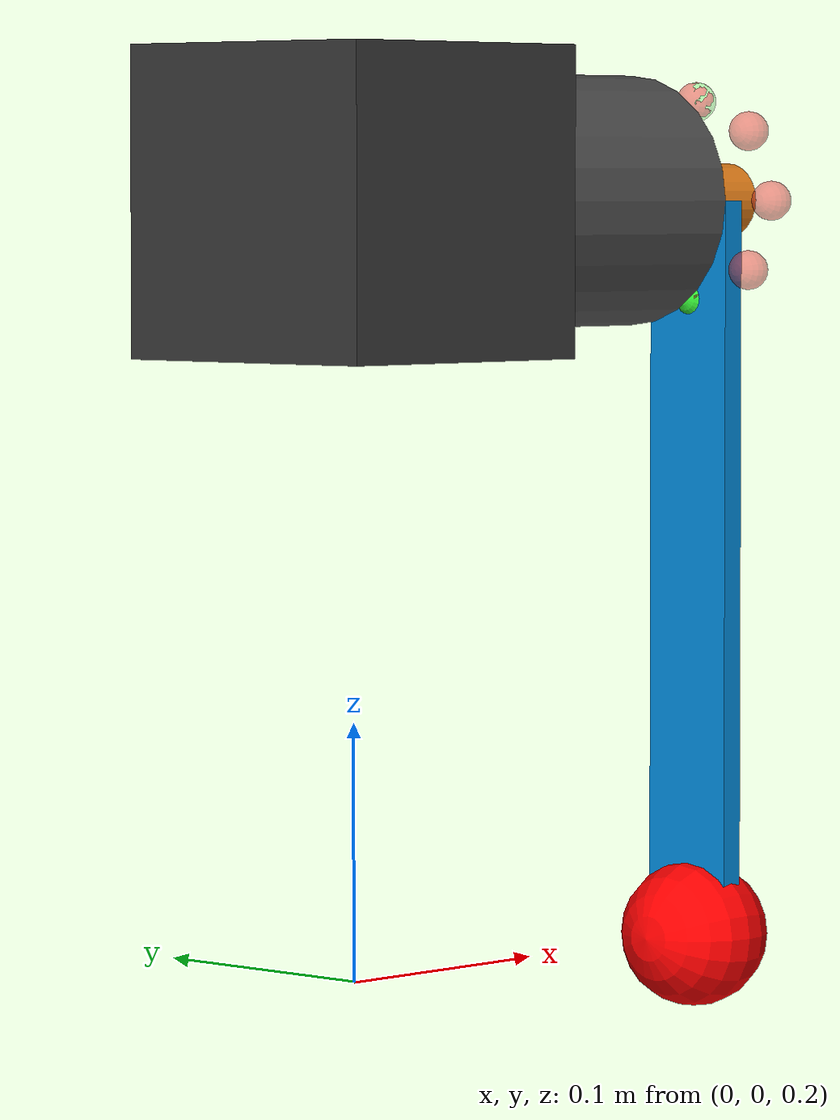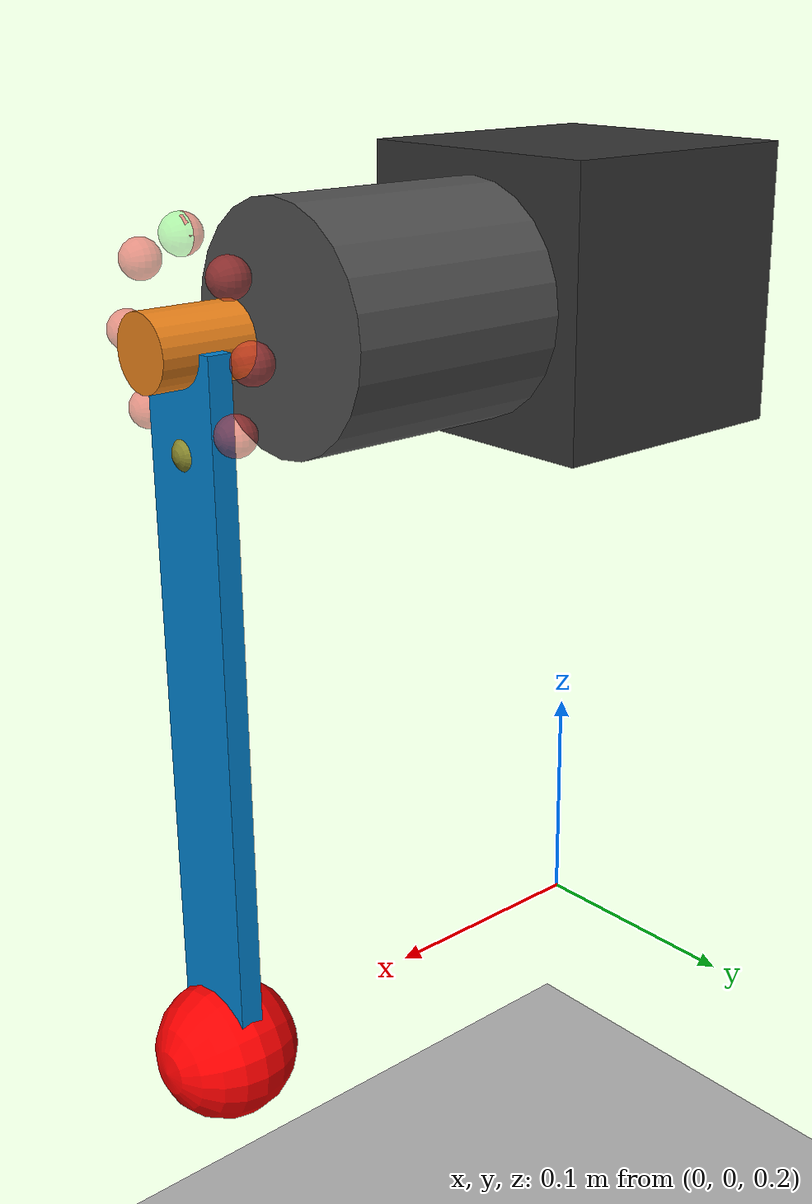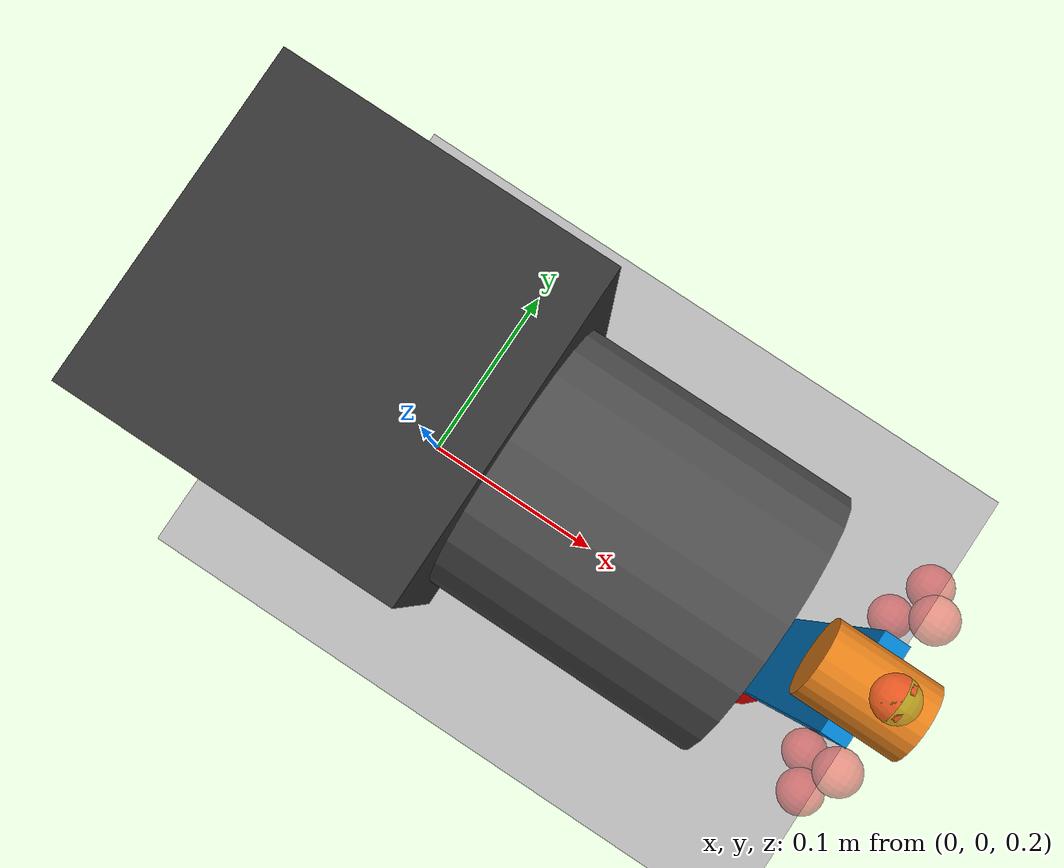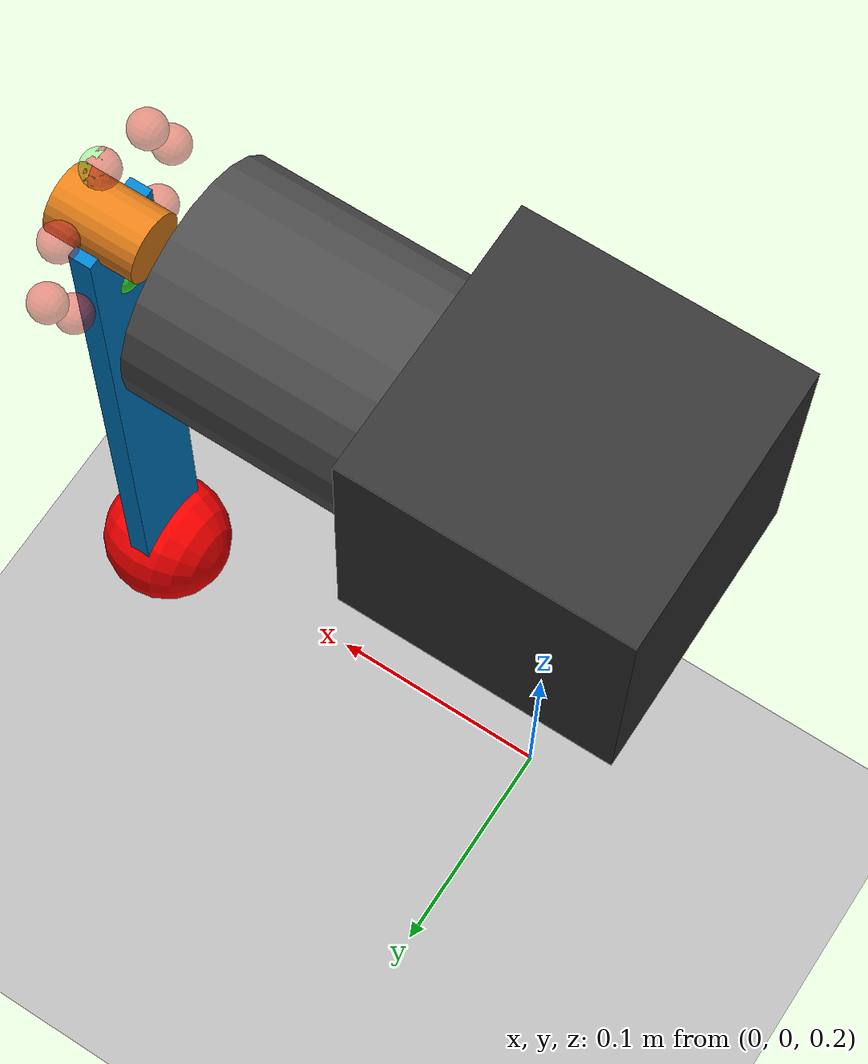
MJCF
<mujoco model="1dof_joint_full_physics_fixed">
    <!--
       编译器与仿真设置
    -->
    <compiler angle="radian" autolimits="true" inertiafromgeom="true"/>
    <option timestep="0.002" integrator="RK4" gravity="0 0 -9.81">
      <flag contact="enable" energy="enable"/>
    </option>

    <statistic center="0.2 0 0.5" extent="0.8"/>

    <visual>
      <headlight diffuse="0.6 0.6 0.6" ambient="0.3 0.3 0.3" specular="0 0 0"/>
      <rgba haze="0.15 0.25 0.35 1"/>
      <global azimuth="140" elevation="-20"/>
    </visual>

    <default>
      <!-- 通用关节参数：降低摩擦以突显齿槽效应 -->
      <joint damping="0.02" frictionloss="0.02" armature="0.005"/>
      <geom type="cylinder" size="0.05 0.02" rgba="0.7 0.7 0.7 1"/>

      <!--
         [齿槽效应专用接触配置]
         solref: "0.02 1" -> 模拟磁力的柔性，允许小球互相"穿过"产生力
         margin: 0.005 -> 增大感应范围，让过度更平滑
      -->
      <default class="cogging_contact">
        <geom type="sphere" size="0.008" rgba="0.9 0.2 0.2 0.5" solref="0.02 1" solimp="0.9 0.95 0.001" margin="0.005"/>
      </default>
    </default>

    <asset>
      <texture type="2d" name="groundplane" builtin="checker" mark="edge" rgb1="0.2 0.3 0.4" rgb2="0.1 0.2 0.3" markrgb="0.8 0.8 0.8" width="300" height="300"/>
      <material name="ground_mat" texture="groundplane" texuniform="true" texrepeat="5 5" reflectance="0.2"/>
      <texture type="skybox" builtin="gradient" rgb1="0.3 0.5 0.7" rgb2="0 0 0" width="512" height="300"/>
    </asset>

    <worldbody>
      <light pos="0 0 2" dir="0 0 -1" directional="true"/>
      <geom name="floor" type="plane" size="0 0 0.1" material="ground_mat"/>

      <!-- [修复1] 基座抬高到 0.5 -->
      <body name="base_link" pos="0 0 0.5">
        <geom type="box" size="0.06 0.06 0.06" rgba="0.2 0.2 0.2 1" mass="5.0"/>
        <!-- 电机外壳 -->
        <geom type="cylinder" size="0.05 0.08" quat="0.707 0 0.707 0" pos="0.08 0 0" rgba="0.3 0.3 0.3 1" mass="1.0"/>

        <!--
           >>> 齿槽效应生成器 (Stator Ring) <<<
           [修复2] 将定子环的位置移到 0.2，与转子轴心重合
           旋转 90 度 (quat="0.707 0 0.707 0") 使其垂直于 X 轴
        -->
        <body name="cogging_stator_ring" pos="0.2 0 0" quat="0.707 0 0.707 0">
           <!-- 定义8个定子极，半径 0.04 -->
           <geom class="cogging_contact" pos="0.04 0.00 0.00"/>
           <geom class="cogging_contact" pos="0.028 0.028 0.00"/>
           <geom class="cogging_contact" pos="0.00 0.04 0.00"/>
           <geom class="cogging_contact" pos="-0.028 0.028 0.00"/>
           <geom class="cogging_contact" pos="-0.04 0.00 0.00"/>
           <geom class="cogging_contact" pos="-0.028 -0.028 0.00"/>
           <geom class="cogging_contact" pos="0.00 -0.04 0.00"/>
           <geom class="cogging_contact" pos="0.028 -0.028 0.00"/>
        </body>

        <!--
           [修复3] 转子轴心移到 0.2，避开基座
        -->
        <body name="motor_rotor" pos="0.2 0 0" euler="0 1.5708 0">
          <!-- 理想关节 (转子) -->
          <joint name="joint_ideal" type="hinge" axis="0 0 1" range="-30 30" limited="false"/>

          <!--
             >>> 齿槽效应生成器 (Rotor Pole) <<<
             转子上的磁极。位置半径也是 0.04，与定子极发生干涉。
          -->
          <body name="cogging_rotor_pole" pos="0 0 0">
             <!-- 绿色小球：产生力的磁极 -->
             <geom class="cogging_contact" pos="0.04 0 0" rgba="0.2 0.9 0.2 1"/>
             <!-- 虚拟配重：不参与碰撞 (group=1)，仅为了视觉平衡 -->
             <geom type="sphere" size="0.008" pos="-0.04 0 0" rgba="0.2 0.9 0.2 0.3" group="1" mass="0"/>
          </body>

          <!-- 减速器输出轴可视化 -->
          <geom type="cylinder" size="0.015 0.02" rgba="0.9 0.5 0.1 1" mass="0.1"/>

          <!-- 实际负载与回差 -->
          <body name="actual_load" pos="0 0 0">
            <!-- 回差关节 -->
            <joint name="joint_backlash" type="hinge" axis="0 0 1"
                   range="-0.005 0.005" limited="true"
                   stiffness="0" damping="0.005" armature="0"/>

            <inertial pos="0.15 0 0" mass="0.8" diaginertia="0.002 0.002 0.002"/>

            <!-- 摆臂 -->
            <geom type="box" size="0.15 0.02 0.005" pos="0.15 0 0" rgba="0 0.5 0.8 1"/>
            <geom type="sphere" size="0.03" pos="0.3 0 0" rgba="1 0 0 1" mass="0.5"/>
            <site name="tip_site" pos="0.3 0 0" size="0.01" rgba="0 1 0 1"/>
          </body>
        </body>
      </body>
    </worldbody>

    <!--
       [修复4] 关键：排除基座与负载的碰撞
       只保留 cogging_contact 之间的碰撞
    -->
    <contact>
      <exclude body1="base_link" body2="actual_load"/>
      <exclude body1="base_link" body2="motor_rotor"/>
    </contact>

    <actuator>
      <!-- 减速比 6 -->
      <motor name="motor_driver" joint="joint_ideal" gear="6" ctrllimited="true" ctrlrange="-5 5"/>
    </actuator>

    <sensor>
      <jointpos name="encoder_pos" joint="joint_ideal"/>
      <jointvel name="encoder_vel" joint="joint_ideal"/>
      <framepos name="load_tip_pos" objtype="site" objname="tip_site"/>
      <actuatorfrc name="motor_torque" actuator="motor_driver"/>
    </sensor>
  </mujoco>
